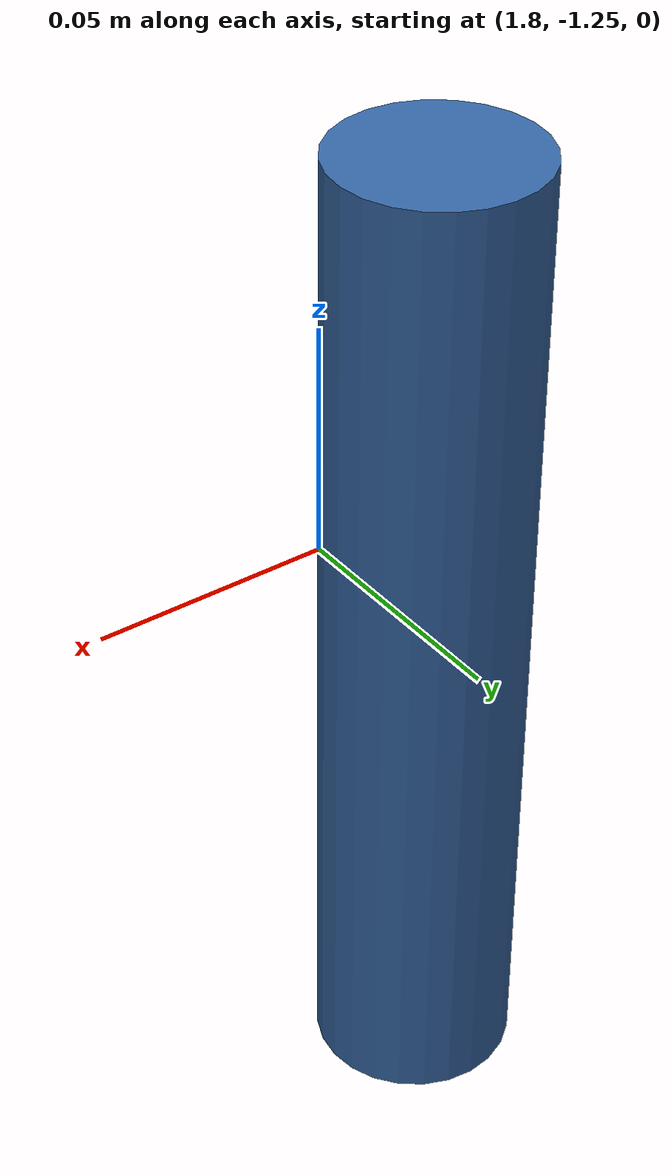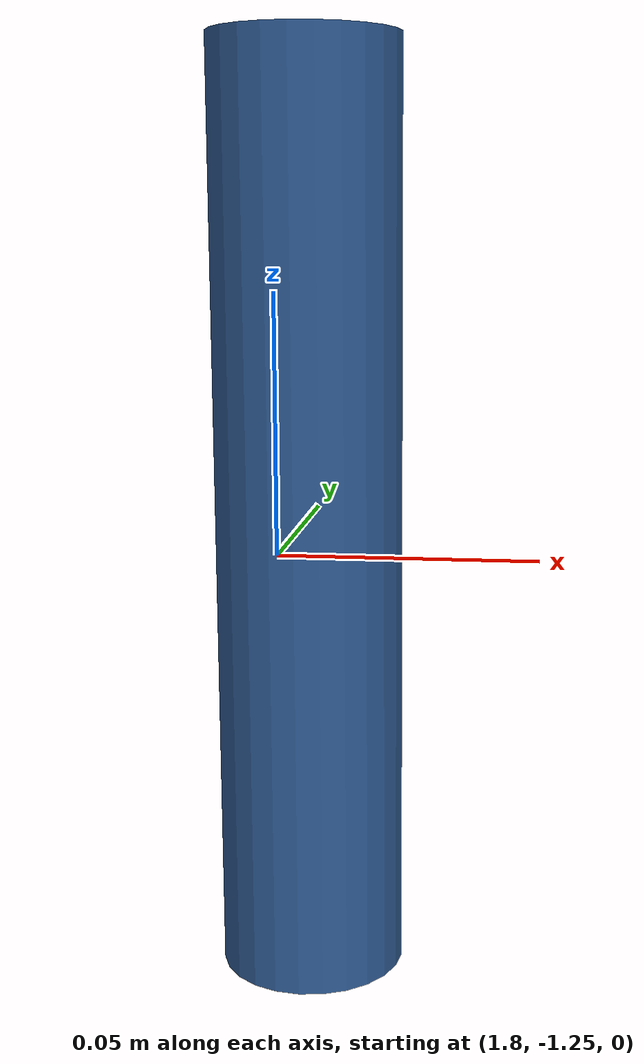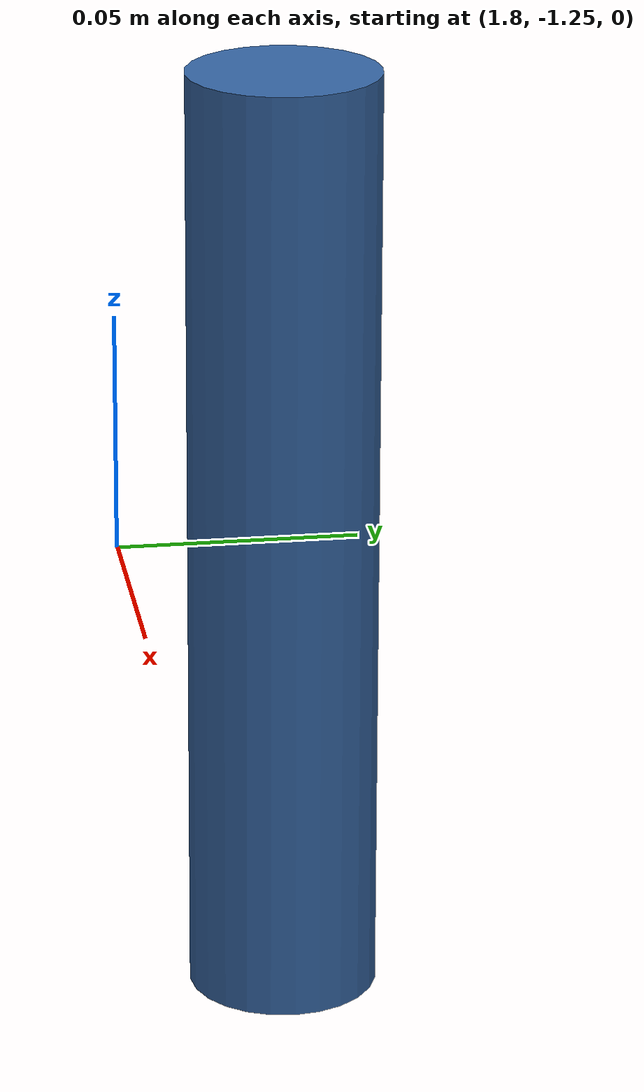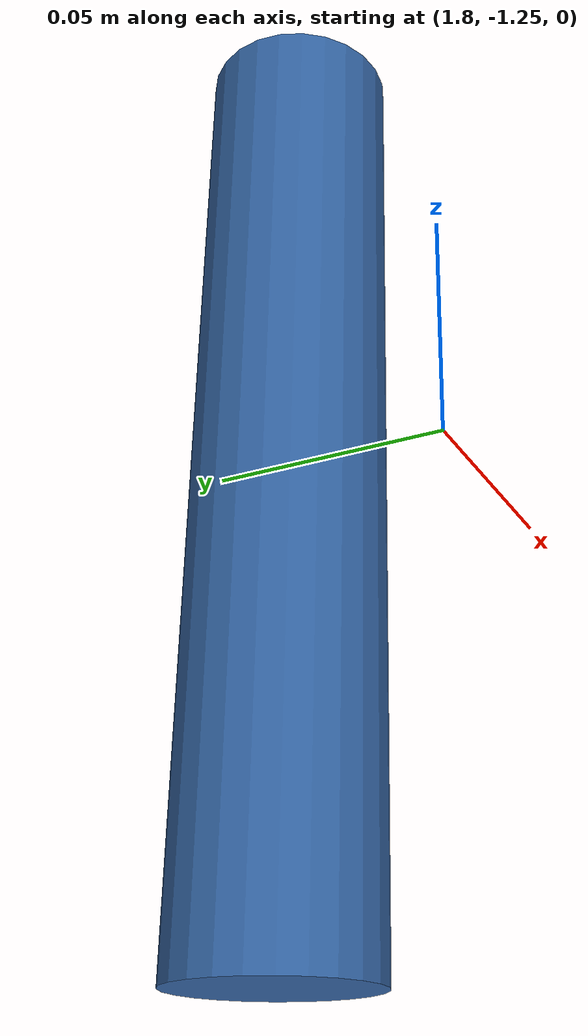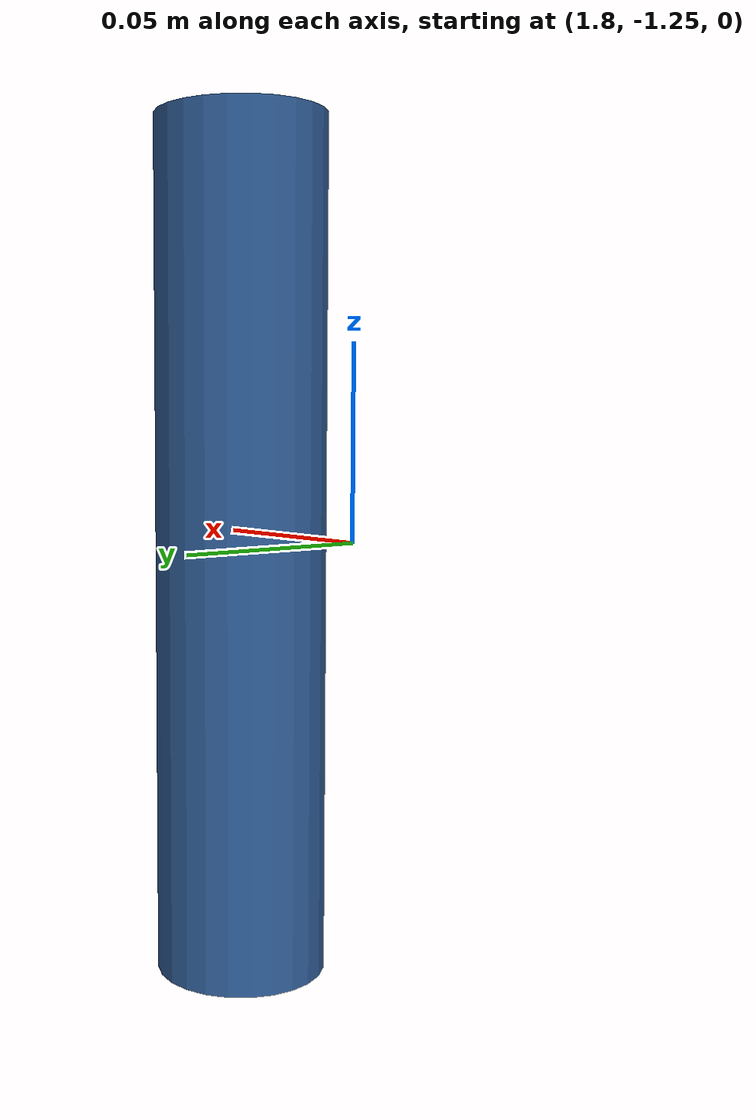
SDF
<?xml version='1.0'?>
<sdf version='1.7'>
  <model name='small_cylinder_blue'>
    <link name='link_4'>
      <inertial>
        <mass>0.00117341</mass>
        <inertia>
          <ixx>8.27e-06</ixx>
          <ixy>0</ixy>
          <ixz>0</ixz>
          <iyy>8.27e-06</iyy>
          <iyz>0</iyz>
          <izz>6e-07</izz>
        </inertia>
        <pose>0 0 0 0 -0 0</pose>
      </inertial>
      <pose>1.80047 -1.21558 1.7e-05 -1e-05 -0 0</pose>
      <gravity>1</gravity>
      <self_collide>0</self_collide>
      <kinematic>0</kinematic>
      <enable_wind>0</enable_wind>
      <visual name='visual'>
        <pose>0 0 0 0 -0 0</pose>
        <geometry>
          <cylinder>
            <radius>0.02</radius>
            <length>0.2</length>
          </cylinder>
        </geometry>
        <material>
          <lighting>1</lighting>
          <script>
            <uri>file://media/materials/scripts/gazebo.material</uri>
            <name>Gazebo/Grey</name>
          </script>
          <shader type='pixel'>
            <normal_map>__default__</normal_map>
          </shader>
          <diffuse>0.204 0.396 0.643 1</diffuse>
          <ambient>0.204 0.396 0.643 1</ambient>
          <specular>0.01 0.01 0.01 1</specular>
          <emissive>0 0 0 1</emissive>
        </material>
        <transparency>0</transparency>
        <cast_shadows>1</cast_shadows>
      </visual>
      <collision name='collision'>
        <laser_retro>0</laser_retro>
        <max_contacts>10</max_contacts>
        <pose>0 0 0 0 -0 0</pose>
        <geometry>
          <cylinder>
            <radius>0.02</radius>
            <length>0.2</length>
          </cylinder>
        </geometry>
        <surface>
          <friction>
            <ode>
              <mu>1</mu>
              <mu2>1</mu2>
              <fdir1>0 0 0</fdir1>
              <slip1>0</slip1>
              <slip2>0</slip2>
            </ode>
            <torsional>
              <coefficient>1</coefficient>
              <patch_radius>0</patch_radius>
              <surface_radius>0</surface_radius>
              <use_patch_radius>1</use_patch_radius>
              <ode>
                <slip>0</slip>
              </ode>
            </torsional>
          </friction>
          <bounce>
            <restitution_coefficient>0</restitution_coefficient>
            <threshold>1e+06</threshold>
          </bounce>
          <contact>
            <collide_without_contact>0</collide_without_contact>
            <collide_without_contact_bitmask>1</collide_without_contact_bitmask>
            <collide_bitmask>1</collide_bitmask>
            <ode>
              <soft_cfm>0</soft_cfm>
              <soft_erp>0.2</soft_erp>
              <kp>1e+13</kp>
              <kd>1</kd>
              <max_vel>0.01</max_vel>
              <min_depth>0</min_depth>
            </ode>
            <bullet>
              <split_impulse>1</split_impulse>
              <split_impulse_penetration_threshold>-0.01</split_impulse_penetration_threshold>
              <soft_cfm>0</soft_cfm>
              <soft_erp>0.2</soft_erp>
              <kp>1e+13</kp>
              <kd>1</kd>
            </bullet>
          </contact>
        </surface>
      </collision>
    </link>
    <static>0</static>
    <allow_auto_disable>1</allow_auto_disable>
  </model>
</sdf>
